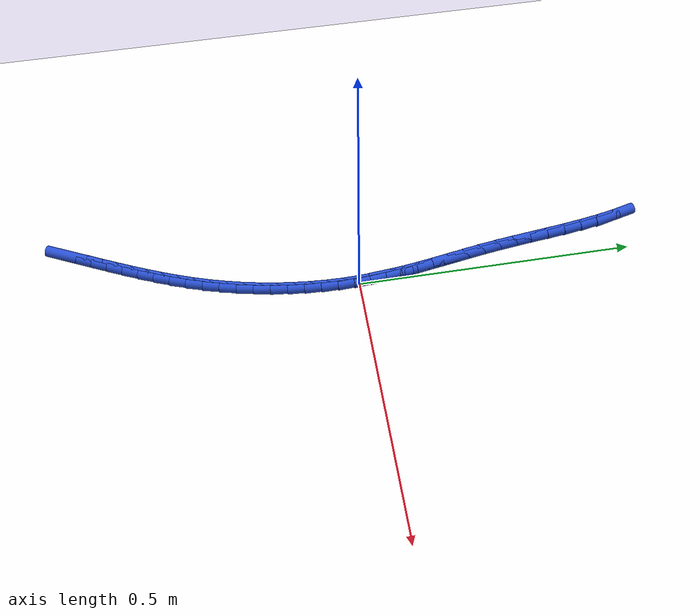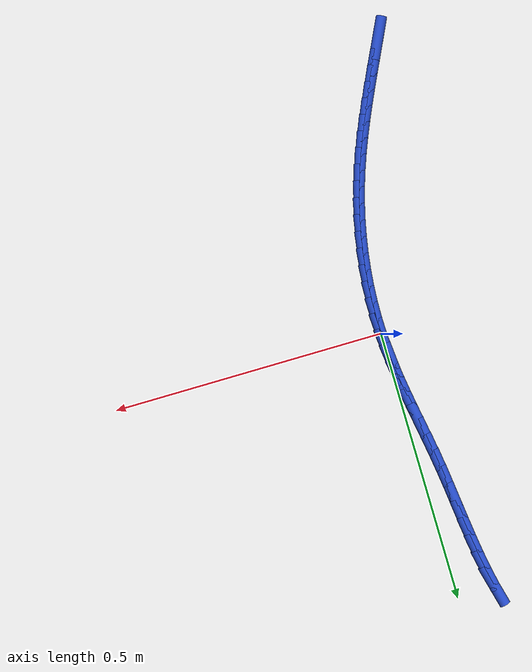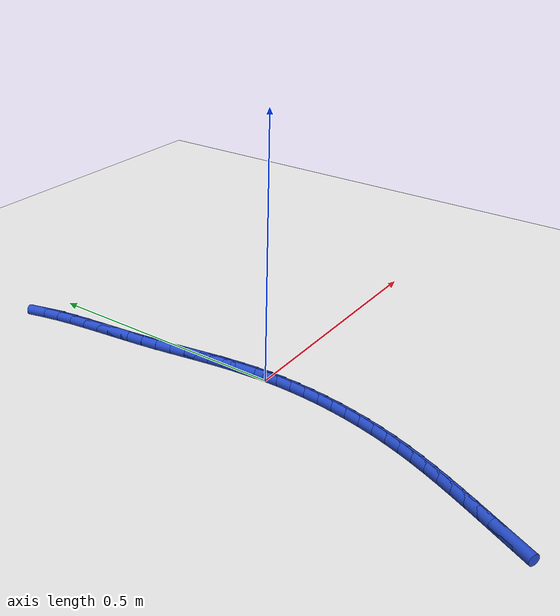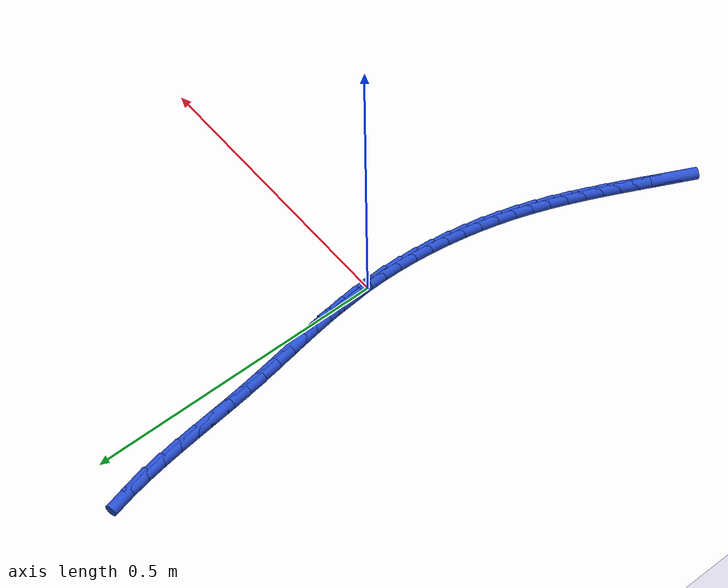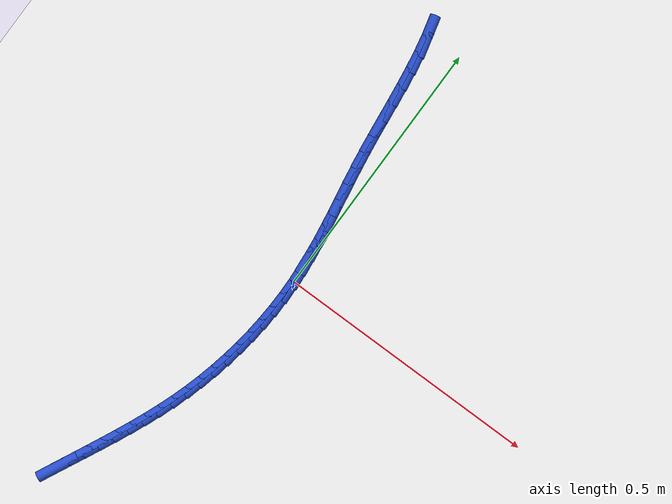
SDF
<sdf version="1.6">
 <world name="default">
  <model name="ground_plane">
   <static>1</static>
   <link name="link">
    <collision name="collision">
     <geometry><plane><normal>0 0 1</normal><size>100 100</size></plane></geometry>
     <surface><friction><ode><mu>100</mu><mu2>50</mu2></ode></friction></surface>
    </collision>
    <visual name="visual">
     <cast_shadows>0</cast_shadows>
     <geometry><plane><normal>0 0 1</normal><size>100 100</size></plane></geometry>
     <material>
      <script><uri>file://media/materials/scripts/gazebo.material</uri><name>Gazebo/WhiteGlow</name></script>
     </material>
    </visual>
   </link>
  </model>
  <model name="line">
   <link name="link_0">
    <pose>-3.122502256758253e-17 4.85722573273506e-17 0.01 0 1.57 -1.511353658124917</pose>
    <collision name="collision">
     <geometry><cylinder><radius>0.01</radius><length>0.08</length></cylinder></geometry>
    </collision>
    <visual name="visual">
     <material>
      <script><name>Gazebo/Blue</name><uri>file://media/materials/scripts/gazebo.material</uri></script>
     </material>
     <geometry><cylinder><radius>0.01</radius><length>0.08</length></cylinder></geometry>
    </visual>
   </link>
   <link name="link_1">
    <pose>-0.0017431352190729868 0.02929009904243795 0.01 0 1.57 -1.4755822268999617</pose>
    <collision name="collision">
     <geometry><cylinder><radius>0.01</radius><length>0.08</length></cylinder></geometry>
    </collision>
    <visual name="visual">
     <material>
      <script><name>Gazebo/Blue</name><uri>file://media/materials/scripts/gazebo.material</uri></script>
     </material>
     <geometry><cylinder><radius>0.01</radius><length>0.08</length></cylinder></geometry>
    </visual>
   </link>
   <link name="link_2">
    <pose>-0.0045204153321044774 0.05837069060994985 0.01 0 1.57 -1.4466732365010249</pose>
    <collision name="collision">
     <geometry><cylinder><radius>0.01</radius><length>0.08</length></cylinder></geometry>
    </collision>
    <visual name="visual">
     <material>
      <script><name>Gazebo/Blue</name><uri>file://media/materials/scripts/gazebo.material</uri></script>
     </material>
     <geometry><cylinder><radius>0.01</radius><length>0.08</length></cylinder></geometry>
    </visual>
   </link>
   <link name="link_3">
    <pose>-0.008138639546915962 0.08737112600543553 0.01 0 1.57 -1.4249874915659761</pose>
    <collision name="collision">
     <geometry><cylinder><radius>0.01</radius><length>0.08</length></cylinder></geometry>
    </collision>
    <visual name="visual">
     <material>
      <script><name>Gazebo/Blue</name><uri>file://media/materials/scripts/gazebo.material</uri></script>
     </material>
     <geometry><cylinder><radius>0.01</radius><length>0.08</length></cylinder></geometry>
    </visual>
   </link>
   <link name="link_4">
    <pose>-0.012404607071328878 0.1164207565317946 0.01 0 1.57 -1.4106735322179795</pose>
    <collision name="collision">
     <geometry><cylinder><radius>0.01</radius><length>0.08</length></cylinder></geometry>
    </collision>
    <visual name="visual">
     <material>
      <script><name>Gazebo/Blue</name><uri>file://media/materials/scripts/gazebo.material</uri></script>
     </material>
     <geometry><cylinder><radius>0.01</radius><length>0.08</length></cylinder></geometry>
    </visual>
   </link>
   <link name="link_5">
    <pose>-0.01712511711316468 0.1456489334919269 0.01 0 1.57 -1.4036990282547968</pose>
    <collision name="collision">
     <geometry><cylinder><radius>0.01</radius><length>0.08</length></cylinder></geometry>
    </collision>
    <visual name="visual">
     <material>
      <script><name>Gazebo/Blue</name><uri>file://media/materials/scripts/gazebo.material</uri></script>
     </material>
     <geometry><cylinder><radius>0.01</radius><length>0.08</length></cylinder></geometry>
    </visual>
   </link>
   <link name="link_6">
    <pose>-0.022106968880244795 0.1751850081887319 0.01 0 1.57 -1.4038810192795896</pose>
    <collision name="collision">
     <geometry><cylinder><radius>0.01</radius><length>0.08</length></cylinder></geometry>
    </collision>
    <visual name="visual">
     <material>
      <script><name>Gazebo/Blue</name><uri>file://media/materials/scripts/gazebo.material</uri></script>
     </material>
     <geometry><cylinder><radius>0.01</radius><length>0.08</length></cylinder></geometry>
    </visual>
   </link>
   <link name="link_7">
    <pose>-0.027156961580390684 0.20515833192510952 0.01 0 1.57 -1.4109106931963644</pose>
    <collision name="collision">
     <geometry><cylinder><radius>0.01</radius><length>0.08</length></cylinder></geometry>
    </collision>
    <visual name="visual">
     <material>
      <script><name>Gazebo/Blue</name><uri>file://media/materials/scripts/gazebo.material</uri></script>
     </material>
     <geometry><cylinder><radius>0.01</radius><length>0.08</length></cylinder></geometry>
    </visual>
   </link>
   <link name="link_8">
    <pose>-0.032081894421423764 0.23569825600395922 0.01 0 1.57 -1.4243716691834938</pose>
    <collision name="collision">
     <geometry><cylinder><radius>0.01</radius><length>0.08</length></cylinder></geometry>
    </collision>
    <visual name="visual">
     <material>
      <script><name>Gazebo/Blue</name><uri>file://media/materials/scripts/gazebo.material</uri></script>
     </material>
     <geometry><cylinder><radius>0.01</radius><length>0.08</length></cylinder></geometry>
    </visual>
   </link>
   <link name="link_9">
    <pose>-0.03668856661116552 0.266934131728181 0.01 0 1.57 -1.441789835447863</pose>
    <collision name="collision">
     <geometry><cylinder><radius>0.01</radius><length>0.08</length></cylinder></geometry>
    </collision>
    <visual name="visual">
     <material>
      <script><name>Gazebo/Blue</name><uri>file://media/materials/scripts/gazebo.material</uri></script>
     </material>
     <geometry><cylinder><radius>0.01</radius><length>0.08</length></cylinder></geometry>
    </visual>
   </link>
   <link name="link_10">
    <pose>-0.04084113952948911 0.29894423164617806 0.01 0 1.57 -1.4527999926948498</pose>
    <collision name="collision">
     <geometry><cylinder><radius>0.01</radius><length>0.08</length></cylinder></geometry>
    </collision>
    <visual name="visual">
     <material>
      <script><name>Gazebo/Blue</name><uri>file://media/materials/scripts/gazebo.material</uri></script>
     </material>
     <geometry><cylinder><radius>0.01</radius><length>0.08</length></cylinder></geometry>
    </visual>
   </link>
   <link name="link_11">
    <pose>-0.044705094869415735 0.3315385144376585 0.01 0 1.57 -1.4546244826638184</pose>
    <collision name="collision">
     <geometry><cylinder><radius>0.01</radius><length>0.08</length></cylinder></geometry>
    </collision>
    <visual name="visual">
     <material>
      <script><name>Gazebo/Blue</name><uri>file://media/materials/scripts/gazebo.material</uri></script>
     </material>
     <geometry><cylinder><radius>0.01</radius><length>0.08</length></cylinder></geometry>
    </visual>
   </link>
   <link name="link_12">
    <pose>-0.048544509331606166 0.36443914381206227 0.01 0 1.57 -1.447551700593808</pose>
    <collision name="collision">
     <geometry><cylinder><radius>0.01</radius><length>0.08</length></cylinder></geometry>
    </collision>
    <visual name="visual">
     <material>
      <script><name>Gazebo/Blue</name><uri>file://media/materials/scripts/gazebo.material</uri></script>
     </material>
     <geometry><cylinder><radius>0.01</radius><length>0.08</length></cylinder></geometry>
    </visual>
   </link>
   <link name="link_13">
    <pose>-0.05262351593717284 0.39736823332768606 0.01 0 1.57 -1.4314729352384303</pose>
    <collision name="collision">
     <geometry><cylinder><radius>0.01</radius><length>0.08</length></cylinder></geometry>
    </collision>
    <visual name="visual">
     <material>
      <script><name>Gazebo/Blue</name><uri>file://media/materials/scripts/gazebo.material</uri></script>
     </material>
     <geometry><cylinder><radius>0.01</radius><length>0.08</length></cylinder></geometry>
    </visual>
   </link>
   <link name="link_14">
    <pose>-0.057206247707228174 0.43004789654282655 0.01 0 1.57 -1.4058938391447775</pose>
    <collision name="collision">
     <geometry><cylinder><radius>0.01</radius><length>0.08</length></cylinder></geometry>
    </collision>
    <visual name="visual">
     <material>
      <script><name>Gazebo/Blue</name><uri>file://media/materials/scripts/gazebo.material</uri></script>
     </material>
     <geometry><cylinder><radius>0.01</radius><length>0.08</length></cylinder></geometry>
    </visual>
   </link>
   <link name="link_15">
    <pose>-0.06255683766288461 0.46220024701578033 0.01 0 1.57 -1.3699324122369962</pose>
    <collision name="collision">
     <geometry><cylinder><radius>0.01</radius><length>0.08</length></cylinder></geometry>
    </collision>
    <visual name="visual">
     <material>
      <script><name>Gazebo/Blue</name><uri>file://media/materials/scripts/gazebo.material</uri></script>
     </material>
     <geometry><cylinder><radius>0.01</radius><length>0.08</length></cylinder></geometry>
    </visual>
   </link>
   <link name="link_16">
    <pose>-0.0689394188252546 0.4935473983048441 0.01 0 1.57 -1.3223162524967749</pose>
    <collision name="collision">
     <geometry><cylinder><radius>0.01</radius><length>0.08</length></cylinder></geometry>
    </collision>
    <visual name="visual">
     <material>
      <script><name>Gazebo/Blue</name><uri>file://media/materials/scripts/gazebo.material</uri></script>
     </material>
     <geometry><cylinder><radius>0.01</radius><length>0.08</length></cylinder></geometry>
    </visual>
   </link>
   <link name="link_212">
    <pose>-0.14317948498934155 -0.5146076293824597 0.01 0 1.57 1.1190761746042925</pose>
    <collision name="collision">
     <geometry><cylinder><radius>0.01</radius><length>0.08</length></cylinder></geometry>
    </collision>
    <visual name="visual">
     <material>
      <script><name>Gazebo/Blue</name><uri>file://media/materials/scripts/gazebo.material</uri></script>
     </material>
     <geometry><cylinder><radius>0.01</radius><length>0.08</length></cylinder></geometry>
    </visual>
   </link>
   <link name="link_213">
    <pose>-0.12989563400771215 -0.4872283151973119 0.01 0 1.57 1.1188288014408265</pose>
    <collision name="collision">
     <geometry><cylinder><radius>0.01</radius><length>0.08</length></cylinder></geometry>
    </collision>
    <visual name="visual">
     <material>
      <script><name>Gazebo/Blue</name><uri>file://media/materials/scripts/gazebo.material</uri></script>
     </material>
     <geometry><cylinder><radius>0.01</radius><length>0.08</length></cylinder></geometry>
    </visual>
   </link>
   <link name="link_214">
    <pose>-0.11668985885981967 -0.4600270585246597 0.01 0 1.57 1.1233613977716812</pose>
    <collision name="collision">
     <geometry><cylinder><radius>0.01</radius><length>0.08</length></cylinder></geometry>
    </collision>
    <visual name="visual">
     <material>
      <script><name>Gazebo/Blue</name><uri>file://media/materials/scripts/gazebo.material</uri></script>
     </material>
     <geometry><cylinder><radius>0.01</radius><length>0.08</length></cylinder></geometry>
    </visual>
   </link>
   <link name="link_215">
    <pose>-0.10367929270269309 -0.43291580230826315 0.01 0 1.57 1.1327400428949395</pose>
    <collision name="collision">
     <geometry><cylinder><radius>0.01</radius><length>0.08</length></cylinder></geometry>
    </collision>
    <visual name="visual">
     <material>
      <script><name>Gazebo/Blue</name><uri>file://media/materials/scripts/gazebo.material</uri></script>
     </material>
     <geometry><cylinder><radius>0.01</radius><length>0.08</length></cylinder></geometry>
    </visual>
   </link>
   <link name="link_216">
    <pose>-0.09098106869336232 -0.405806489491884 0.01 0 1.57 1.1470007684162473</pose>
    <collision name="collision">
     <geometry><cylinder><radius>0.01</radius><length>0.08</length></cylinder></geometry>
    </collision>
    <visual name="visual">
     <material>
      <script><name>Gazebo/Blue</name><uri>file://media/materials/scripts/gazebo.material</uri></script>
     </material>
     <geometry><cylinder><radius>0.01</radius><length>0.08</length></cylinder></geometry>
    </visual>
   </link>
   <link name="link_217">
    <pose>-0.07871231998885635 -0.3786110630192822 0.01 0 1.57 1.1661418459169846</pose>
    <collision name="collision">
     <geometry><cylinder><radius>0.01</radius><length>0.08</length></cylinder></geometry>
    </collision>
    <visual name="visual">
     <material>
      <script><name>Gazebo/Blue</name><uri>file://media/materials/scripts/gazebo.material</uri></script>
     </material>
     <geometry><cylinder><radius>0.01</radius><length>0.08</length></cylinder></geometry>
    </visual>
   </link>
   <link name="link_218">
    <pose>-0.0669901797462044 -0.35124146583421817 0.01 0 1.57 1.1901131095766713</pose>
    <collision name="collision">
     <geometry><cylinder><radius>0.01</radius><length>0.08</length></cylinder></geometry>
    </collision>
    <visual name="visual">
     <material>
      <script><name>Gazebo/Blue</name><uri>file://media/materials/scripts/gazebo.material</uri></script>
     </material>
     <geometry><cylinder><radius>0.01</radius><length>0.08</length></cylinder></geometry>
    </visual>
   </link>
   <link name="link_219">
    <pose>-0.05593178112243551 -0.3236096408804518 0.01 0 1.57 1.2188029774002052</pose>
    <collision name="collision">
     <geometry><cylinder><radius>0.01</radius><length>0.08</length></cylinder></geometry>
    </collision>
    <visual name="visual">
     <material>
      <script><name>Gazebo/Blue</name><uri>file://media/materials/scripts/gazebo.material</uri></script>
     </material>
     <geometry><cylinder><radius>0.01</radius><length>0.08</length></cylinder></geometry>
    </visual>
   </link>
   <link name="link_220">
    <pose>-0.045654257274579516 -0.29562753110174494 0.01 0 1.57 1.252023836397431</pose>
    <collision name="collision">
     <geometry><cylinder><radius>0.01</radius><length>0.08</length></cylinder></geometry>
    </collision>
    <visual name="visual">
     <material>
      <script><name>Gazebo/Blue</name><uri>file://media/materials/scripts/gazebo.material</uri></script>
     </material>
     <geometry><cylinder><radius>0.01</radius><length>0.08</length></cylinder></geometry>
    </visual>
   </link>
   <link name="link_221">
    <pose>-0.036274729953006256 -0.26720710190001684 0.01 0 1.57 1.288500231945938</pose>
    <collision name="collision">
     <geometry><cylinder><radius>0.01</radius><length>0.08</length></cylinder></geometry>
    </collision>
    <visual name="visual">
     <material>
      <script><name>Gazebo/Blue</name><uri>file://media/materials/scripts/gazebo.material</uri></script>
     </material>
     <geometry><cylinder><radius>0.01</radius><length>0.08</length></cylinder></geometry>
    </visual>
   </link>
   <link name="link_222">
    <pose>-0.027890352324516872 -0.23829963410029428 0.01 0 1.57 1.3251009562716627</pose>
    <collision name="collision">
     <geometry><cylinder><radius>0.01</radius><length>0.08</length></cylinder></geometry>
    </collision>
    <visual name="visual">
     <material>
      <script><name>Gazebo/Blue</name><uri>file://media/materials/scripts/gazebo.material</uri></script>
     </material>
     <geometry><cylinder><radius>0.01</radius><length>0.08</length></cylinder></geometry>
    </visual>
   </link>
   <link name="link_223">
    <pose>-0.020537250735202163 -0.20897656203117176 0.01 0 1.57 1.361479083593049</pose>
    <collision name="collision">
     <geometry><cylinder><radius>0.01</radius><length>0.08</length></cylinder></geometry>
    </collision>
    <visual name="visual">
     <material>
      <script><name>Gazebo/Blue</name><uri>file://media/materials/scripts/gazebo.material</uri></script>
     </material>
     <geometry><cylinder><radius>0.01</radius><length>0.08</length></cylinder></geometry>
    </visual>
   </link>
   <link name="link_224">
    <pose>-0.014239933890932784 -0.17933219357355373 0.01 0 1.57 1.3978905759130638</pose>
    <collision name="collision">
     <geometry><cylinder><radius>0.01</radius><length>0.08</length></cylinder></geometry>
    </collision>
    <visual name="visual">
     <material>
      <script><name>Gazebo/Blue</name><uri>file://media/materials/scripts/gazebo.material</uri></script>
     </material>
     <geometry><cylinder><radius>0.01</radius><length>0.08</length></cylinder></geometry>
    </visual>
   </link>
   <link name="link_225">
    <pose>-0.009022910497578822 -0.14946083660834267 0.01 0 1.57 1.434589348913476</pose>
    <collision name="collision">
     <geometry><cylinder><radius>0.01</radius><length>0.08</length></cylinder></geometry>
    </collision>
    <visual name="visual">
     <material>
      <script><name>Gazebo/Blue</name><uri>file://media/materials/scripts/gazebo.material</uri></script>
     </material>
     <geometry><cylinder><radius>0.01</radius><length>0.08</length></cylinder></geometry>
    </visual>
   </link>
   <link name="link_226">
    <pose>-0.004910689261010554 -0.11945679901644166 0.01 0 1.57 1.4718307119849827</pose>
    <collision name="collision">
     <geometry><cylinder><radius>0.01</radius><length>0.08</length></cylinder></geometry>
    </collision>
    <visual name="visual">
     <material>
      <script><name>Gazebo/Blue</name><uri>file://media/materials/scripts/gazebo.material</uri></script>
     </material>
     <geometry><cylinder><radius>0.01</radius><length>0.08</length></cylinder></geometry>
    </visual>
   </link>
   <link name="link_227">
    <pose>-0.0019277788870982575 -0.08941438867875383 0.01 0 1.57 1.5098746155810747</pose>
    <collision name="collision">
     <geometry><cylinder><radius>0.01</radius><length>0.08</length></cylinder></geometry>
    </collision>
    <visual name="visual">
     <material>
      <script><name>Gazebo/Blue</name><uri>file://media/materials/scripts/gazebo.material</uri></script>
     </material>
     <geometry><cylinder><radius>0.01</radius><length>0.08</length></cylinder></geometry>
    </visual>
   </link>
   <link name="link_228">
    <pose>-9.868808171217998e-05 -0.059427913476181496 0.01 0 1.57 1.5489886346766155</pose>
    <collision name="collision">
     <geometry><cylinder><radius>0.01</radius><length>0.08</length></cylinder></geometry>
    </collision>
    <visual name="visual">
     <material>
      <script><name>Gazebo/Blue</name><uri>file://media/materials/scripts/gazebo.material</uri></script>
     </material>
     <geometry><cylinder><radius>0.01</radius><length>0.08</length></cylinder></geometry>
    </visual>
   </link>
   <link name="link_229">
    <pose>0.0005520744492773051 -0.0295916812896294 0.01 0 1.57 -1.5521420838916284</pose>
    <collision name="collision">
     <geometry><cylinder><radius>0.01</radius><length>0.08</length></cylinder></geometry>
    </collision>
    <visual name="visual">
     <material>
      <script><name>Gazebo/Blue</name><uri>file://media/materials/scripts/gazebo.material</uri></script>
     </material>
     <geometry><cylinder><radius>0.01</radius><length>0.08</length></cylinder></geometry>
    </visual>
   </link>
   <link name="link_230">
    <pose>-1.734723475976807e-17 1.8041124150158794e-16 0.01 0 1.57 -1.5100421798572374</pose>
    <collision name="collision">
     <geometry><cylinder><radius>0.01</radius><length>0.08</length></cylinder></geometry>
    </collision>
    <visual name="visual">
     <material>
      <script><name>Gazebo/Blue</name><uri>file://media/materials/scripts/gazebo.material</uri></script>
     </material>
     <geometry><cylinder><radius>0.01</radius><length>0.08</length></cylinder></geometry>
    </visual>
   </link>
   <link name="link_231">
    <pose>-0.0017794201354144317 0.029252822511804114 0.01 0 1.57 -1.4660008417349457</pose>
    <collision name="collision">
     <geometry><cylinder><radius>0.01</radius><length>0.08</length></cylinder></geometry>
    </collision>
    <visual name="visual">
     <material>
      <script><name>Gazebo/Blue</name><uri>file://media/materials/scripts/gazebo.material</uri></script>
     </material>
     <geometry><cylinder><radius>0.01</radius><length>0.08</length></cylinder></geometry>
    </visual>
   </link>
   <link name="link_232">
    <pose>-0.00481069466283621 0.05807247836487925 0.01 0 1.57 -1.4881455494867242</pose>
    <collision name="collision">
     <geometry><cylinder><radius>0.01</radius><length>0.08</length></cylinder></geometry>
    </collision>
    <visual name="visual">
     <material>
      <script><name>Gazebo/Blue</name><uri>file://media/materials/scripts/gazebo.material</uri></script>
     </material>
     <geometry><cylinder><radius>0.01</radius><length>0.08</length></cylinder></geometry>
    </visual>
   </link>
  </model>
 </world>
</sdf>
